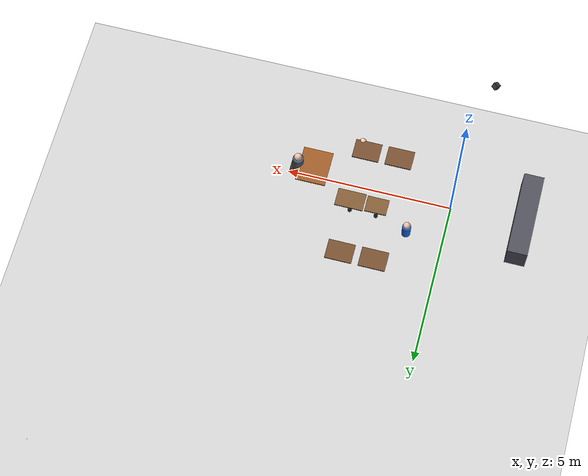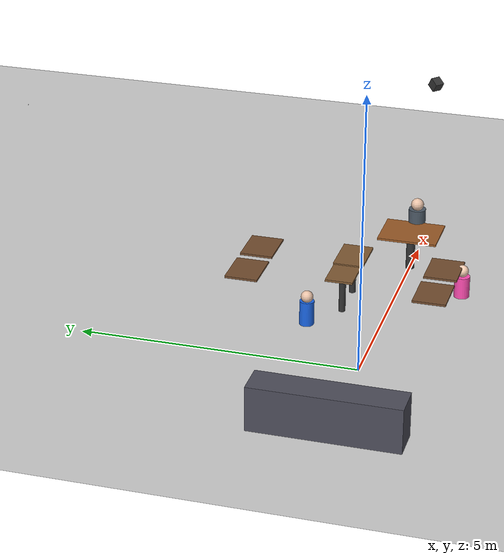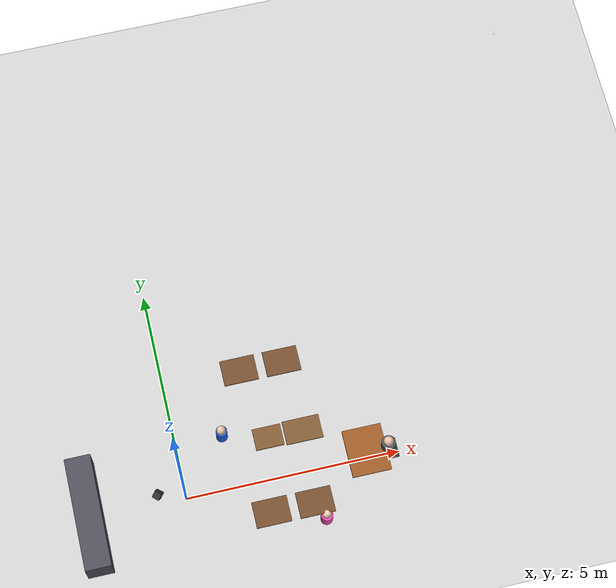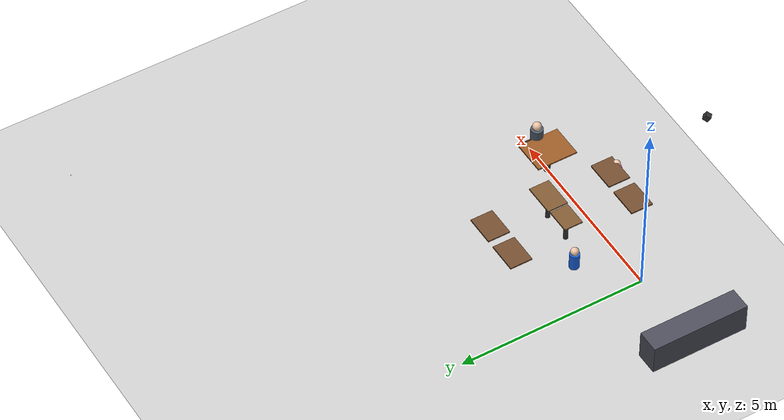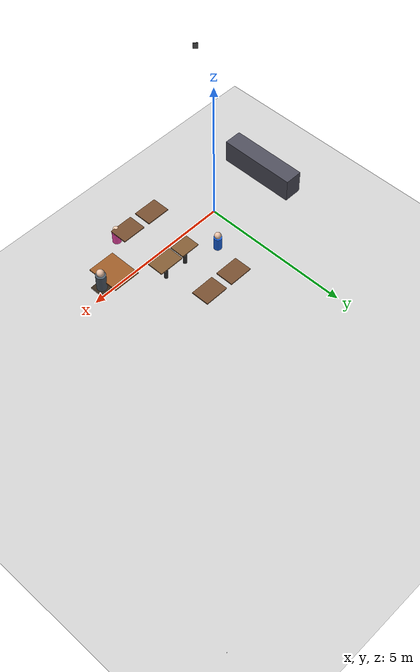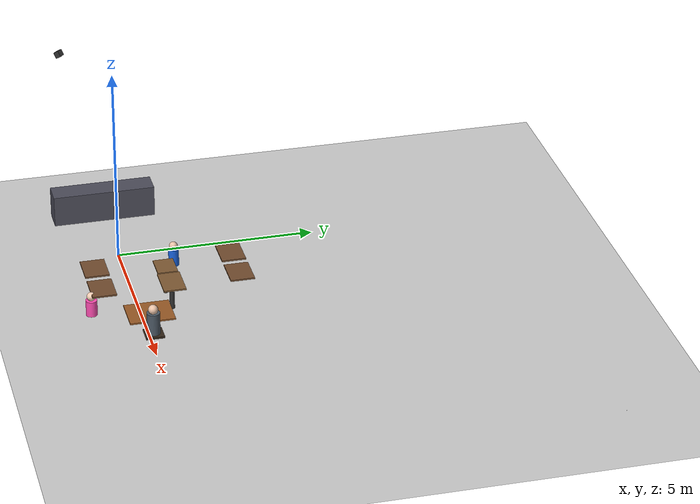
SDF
<?xml version="1.0" ?>
<sdf version="1.6">
  <world name="restaurant_world">

    <!-- Sun Light -->
    <include>
      <uri>model://sun</uri>
    </include>

    <!-- Floor (Ground Plane) -->
    <include>
      <uri>model://ground_plane</uri>
    </include>

    <!-- Lighting & Physics Config -->
    <scene>
      <ambient>0.65 0.65 0.65 1.0</ambient>
      <background>0.85 0.85 0.85 1.0</background>
      <shadows>true</shadows>
    </scene>

    <!-- Kitchen Serving Counter at Start Area (X=-2.2, Y=0.0: generous rear space from X=0.0 robot spawn) -->
    <model name="kitchen_counter">
      <static>true</static>
      <pose>-2.2 0.0 0.40 0 0 0</pose>
      <link name="counter_link">
        <visual name="counter_top">
          <geometry>
            <box>
              <size>0.6 2.6 0.80</size>
            </box>
          </geometry>
          <material>
            <ambient>0.3 0.3 0.35 1.0</ambient>
            <diffuse>0.3 0.3 0.35 1.0</diffuse>
          </material>
        </visual>
        <collision name="counter_collision">
          <geometry>
            <box>
              <size>0.6 2.6 0.80</size>
            </box>
          </geometry>
        </collision>
      </link>
    </model>

    <!-- Target Customer Dining Table at Goal (X=4.2, Y=0.0) -->
    <model name="table_target">
      <static>true</static>
      <pose>4.2 0.0 0.0 0 0 0</pose>
      <link name="table_link">
        <visual name="top_visual">
          <pose>0 0 0.72 0 0 0</pose>
          <geometry>
            <box>
              <size>0.9 1.1 0.04</size>
            </box>
          </geometry>
          <material>
            <ambient>0.6 0.35 0.15 1.0</ambient>
            <diffuse>0.6 0.35 0.15 1.0</diffuse>
          </material>
        </visual>
        <collision name="top_collision">
          <pose>0 0 0.72 0 0 0</pose>
          <geometry>
            <box>
              <size>0.9 1.1 0.04</size>
            </box>
          </geometry>
        </collision>
        <visual name="leg_visual">
          <pose>0 0 0.35 0 0 0</pose>
          <geometry>
            <cylinder>
              <radius>0.08</radius>
              <length>0.70</length>
            </cylinder>
          </geometry>
          <material>
            <ambient>0.2 0.2 0.2 1.0</ambient>
          </material>
        </visual>
        <collision name="leg_collision">
          <pose>0 0 0.35 0 0 0</pose>
          <geometry>
            <cylinder>
              <radius>0.08</radius>
              <length>0.70</length>
            </cylinder>
          </geometry>
        </collision>
      </link>
    </model>

    <!-- Middle Divider Table 1 (Separating Central Aisle Y=0.0 and Upper Aisle Y=1.6) -->
    <!-- Shifted forward to X=2.1m to ensure wide clear detour corridor between X=1.0 and X=1.6 -->
    <model name="mid_table_1">
      <static>true</static>
      <pose>2.1 0.80 0.0 0 0 0</pose>
      <link name="table_link">
        <visual name="top_visual">
          <pose>0 0 0.72 0 0 0</pose>
          <geometry>
            <box>
              <size>0.65 0.50 0.04</size>
            </box>
          </geometry>
          <material>
            <ambient>0.5 0.35 0.2 1.0</ambient>
            <diffuse>0.5 0.35 0.2 1.0</diffuse>
          </material>
        </visual>
        <collision name="top_collision">
          <pose>0 0 0.72 0 0 0</pose>
          <geometry>
            <box>
              <size>0.65 0.50 0.04</size>
            </box>
          </geometry>
        </collision>
        <visual name="leg_visual">
          <pose>0 0 0.35 0 0 0</pose>
          <geometry>
            <cylinder><radius>0.06</radius><length>0.70</length></cylinder>
          </geometry>
          <material><ambient>0.2 0.2 0.2 1.0</ambient></material>
        </visual>
        <collision name="leg_collision">
          <pose>0 0 0.35 0 0 0</pose>
          <geometry>
            <cylinder><radius>0.06</radius><length>0.70</length></cylinder>
          </geometry>
        </collision>
      </link>
    </model>

    <!-- Middle Divider Table 2 -->
    <model name="mid_table_2">
      <static>true</static>
      <pose>2.9 0.80 0.0 0 0 0</pose>
      <link name="table_link">
        <visual name="top_visual">
          <pose>0 0 0.72 0 0 0</pose>
          <geometry>
            <box>
              <size>0.85 0.55 0.04</size>
            </box>
          </geometry>
          <material>
            <ambient>0.5 0.35 0.2 1.0</ambient>
            <diffuse>0.5 0.35 0.2 1.0</diffuse>
          </material>
        </visual>
        <collision name="top_collision">
          <pose>0 0 0.72 0 0 0</pose>
          <geometry>
            <box>
              <size>0.85 0.55 0.04</size>
            </box>
          </geometry>
        </collision>
        <visual name="leg_visual">
          <pose>0 0 0.35 0 0 0</pose>
          <geometry>
            <cylinder><radius>0.06</radius><length>0.70</length></cylinder>
          </geometry>
          <material><ambient>0.2 0.2 0.2 1.0</ambient></material>
        </visual>
        <collision name="leg_collision">
          <pose>0 0 0.35 0 0 0</pose>
          <geometry>
            <cylinder><radius>0.06</radius><length>0.70</length></cylinder>
          </geometry>
        </collision>
      </link>
    </model>

    <!-- South Side Tables (Guiding Route A from the bottom Y=-0.9) -->
    <model name="south_table_1">
      <static>true</static>
      <pose>1.8 -0.90 0.0 0 0 0</pose>
      <link name="table_link">
        <visual name="top_visual">
          <pose>0 0 0.72 0 0 0</pose>
          <geometry><box><size>0.8 0.6 0.04</size></box></geometry>
          <material><ambient>0.45 0.3 0.18 1.0</ambient></material>
        </visual>
        <collision name="top_collision">
          <pose>0 0 0.72 0 0 0</pose>
          <geometry><box><size>0.8 0.6 0.04</size></box></geometry>
        </collision>
      </link>
    </model>

    <model name="south_table_2">
      <static>true</static>
      <pose>2.8 -0.90 0.0 0 0 0</pose>
      <link name="table_link">
        <visual name="top_visual">
          <pose>0 0 0.72 0 0 0</pose>
          <geometry><box><size>0.8 0.6 0.04</size></box></geometry>
          <material><ambient>0.45 0.3 0.18 1.0</ambient></material>
        </visual>
        <collision name="top_collision">
          <pose>0 0 0.72 0 0 0</pose>
          <geometry><box><size>0.8 0.6 0.04</size></box></geometry>
        </collision>
      </link>
    </model>

    <!-- North Side Tables (Guiding Route B from the top Y=2.5) -->
    <model name="north_table_1">
      <static>true</static>
      <pose>1.8 2.50 0.0 0 0 0</pose>
      <link name="table_link">
        <visual name="top_visual">
          <pose>0 0 0.72 0 0 0</pose>
          <geometry><box><size>0.8 0.6 0.04</size></box></geometry>
          <material><ambient>0.45 0.3 0.18 1.0</ambient></material>
        </visual>
        <collision name="top_collision">
          <pose>0 0 0.72 0 0 0</pose>
          <geometry><box><size>0.8 0.6 0.04</size></box></geometry>
        </collision>
      </link>
    </model>

    <model name="north_table_2">
      <static>true</static>
      <pose>2.8 2.50 0.0 0 0 0</pose>
      <link name="table_link">
        <visual name="top_visual">
          <pose>0 0 0.72 0 0 0</pose>
          <geometry><box><size>0.8 0.6 0.04</size></box></geometry>
          <material><ambient>0.45 0.3 0.18 1.0</ambient></material>
        </visual>
        <collision name="top_collision">
          <pose>0 0 0.72 0 0 0</pose>
          <geometry><box><size>0.8 0.6 0.04</size></box></geometry>
        </collision>
      </link>
    </model>

    <!-- Rolling Girl: Initially seated/waiting at South Dining Table (X=3.0, Y=-1.2, Z=0.0) -->
    <!-- In Act 2 (T >= 12.0s), child_spawner animates her getting up and moving to X=2.5, Y=0.0 to roll across Route A -->
    <model name="rolling_girl">
      <pose>3.0 -1.2 0.0 0 0 1.57</pose>
      <link name="girl_body">
        <inertial>
          <mass>10.0</mass>
          <inertia>
            <ixx>0.15</ixx><ixy>0.0</ixy><ixz>0.0</ixz>
            <iyy>0.15</iyy><iyz>0.0</iyz><izz>0.1</izz>
          </inertia>
        </inertial>
        <!-- Pink Torso -->
        <visual name="torso_visual">
          <pose>0 0 0.35 0 0 0</pose>
          <geometry>
            <cylinder>
              <radius>0.14</radius>
              <length>0.40</length>
            </cylinder>
          </geometry>
          <material>
            <ambient>1.0 0.3 0.7 1.0</ambient>
            <diffuse>1.0 0.3 0.7 1.0</diffuse>
          </material>
        </visual>
        <collision name="torso_collision">
          <pose>0 0 0.35 0 0 0</pose>
          <geometry>
            <cylinder>
              <radius>0.14</radius>
              <length>0.40</length>
            </cylinder>
          </geometry>
        </collision>
        <!-- Head -->
        <visual name="head_visual">
          <pose>0 0 0.65 0 0 0</pose>
          <geometry>
            <sphere>
              <radius>0.11</radius>
            </sphere>
          </geometry>
          <material>
            <ambient>0.95 0.8 0.7 1.0</ambient>
            <diffuse>0.95 0.8 0.7 1.0</diffuse>
          </material>
        </visual>
        <collision name="head_collision">
          <pose>0 0 0.65 0 0 0</pose>
          <geometry>
            <sphere>
              <radius>0.11</radius>
            </sphere>
          </geometry>
        </collision>
      </link>
    </model>

    <!-- Waiting Adult Customer: Seated at Goal Customer Dining Table (X=4.5, Y=0.0) -->
    <model name="waiting_customer">
      <static>true</static>
      <pose>4.7 0.0 0.0 0 0 3.1415</pose>
      <link name="customer_body">
        <!-- Chair Base -->
        <visual name="chair_seat">
          <pose>0 0 0.42 0 0 0</pose>
          <geometry><box><size>0.45 0.45 0.05</size></box></geometry>
          <material><ambient>0.2 0.15 0.1 1.0</ambient></material>
        </visual>
        <!-- Customer Torso (Grey suit / jacket) -->
        <visual name="torso_visual">
          <pose>0 0 0.72 0 0 0</pose>
          <geometry><cylinder><radius>0.16</radius><length>0.55</length></cylinder></geometry>
          <material><ambient>0.3 0.35 0.4 1.0</ambient><diffuse>0.3 0.35 0.4 1.0</diffuse></material>
        </visual>
        <collision name="torso_collision">
          <pose>0 0 0.72 0 0 0</pose>
          <geometry><cylinder><radius>0.16</radius><length>0.55</length></cylinder></geometry>
        </collision>
        <!-- Customer Head -->
        <visual name="head_visual">
          <pose>0 0 1.08 0 0 0</pose>
          <geometry><sphere><radius>0.12</radius></sphere></geometry>
          <material><ambient>0.9 0.75 0.65 1.0</ambient><diffuse>0.9 0.75 0.65 1.0</diffuse></material>
        </visual>
        <collision name="head_collision">
          <pose>0 0 1.08 0 0 0</pose>
          <geometry><sphere><radius>0.12</radius></sphere></geometry>
        </collision>
      </link>
    </model>

    <!-- Running Boy: Starts at X=1.1, Y=1.2 (Act 1 toddler crosser) -->
    <model name="running_boy">
      <pose>1.1 1.2 0.0 0 0 -1.57</pose>
      <link name="boy_body">
        <inertial>
          <mass>12.0</mass>
          <inertia>
            <ixx>0.2</ixx><ixy>0.0</ixy><ixz>0.0</ixz>
            <iyy>0.2</iyy><iyz>0.0</iyz><izz>0.1</izz>
          </inertia>
        </inertial>
        <visual name="torso_visual">
          <pose>0 0 0.40 0 0 0</pose>
          <geometry><cylinder><radius>0.13</radius><length>0.45</length></cylinder></geometry>
          <material><ambient>0.1 0.4 0.9 1.0</ambient><diffuse>0.1 0.4 0.9 1.0</diffuse></material>
        </visual>
        <collision name="torso_collision">
          <pose>0 0 0.40 0 0 0</pose>
          <geometry><cylinder><radius>0.13</radius><length>0.45</length></cylinder></geometry>
        </collision>
        <visual name="head_visual">
          <pose>0 0 0.70 0 0 0</pose>
          <geometry><sphere><radius>0.11</radius></sphere></geometry>
          <material><ambient>0.9 0.75 0.65 1.0</ambient><diffuse>0.9 0.75 0.65 1.0</diffuse></material>
        </visual>
        <collision name="head_collision">
          <pose>0 0 0.70 0 0 0</pose>
          <geometry><sphere><radius>0.11</radius></sphere></geometry>
        </collision>
      </link>
    </model>

    <!-- Legacy alias model -->
    <model name="running_child">
      <pose>10.0 10.0 0.0 0 0 0</pose>
      <static>true</static>
      <link name="dummy_link">
        <visual name="v"><geometry><box><size>0.01 0.01 0.01</size></box></geometry></visual>
      </link>
    </model>

    <!-- Overhead Debug Camera: Wide-angle high view including Kitchen Counter (X=-1.8) and Goal Table (X=4.2) -->
    <model name="overhead_debug_camera">
      <static>true</static>
      <pose>-0.5 -1.2 5.5 0 1.02 0.85</pose>
      <link name="camera_link">
        <visual name="cam_visual">
          <geometry><box><size>0.15 0.15 0.15</size></box></geometry>
          <material><ambient>0.2 0.2 0.2 1.0</ambient></material>
        </visual>
        <sensor type="camera" name="debug_camera">
          <update_rate>10.0</update_rate>
          <camera name="overhead">
            <horizontal_fov>1.45</horizontal_fov>
            <image>
              <width>640</width>
              <height>480</height>
              <format>R8G8B8</format>
            </image>
            <clip><near>0.1</near><far>30.0</far></clip>
          </camera>
          <plugin name="camera_controller" filename="libgazebo_ros_camera.so">
            <ros>
              <remapping>image_raw:=/debug_camera/image_raw</remapping>
              <remapping>camera_info:=/debug_camera/camera_info</remapping>
            </ros>
            <frame_name>camera_link</frame_name>
          </plugin>
        </sensor>
      </link>
    </model>

  </world>
</sdf>
